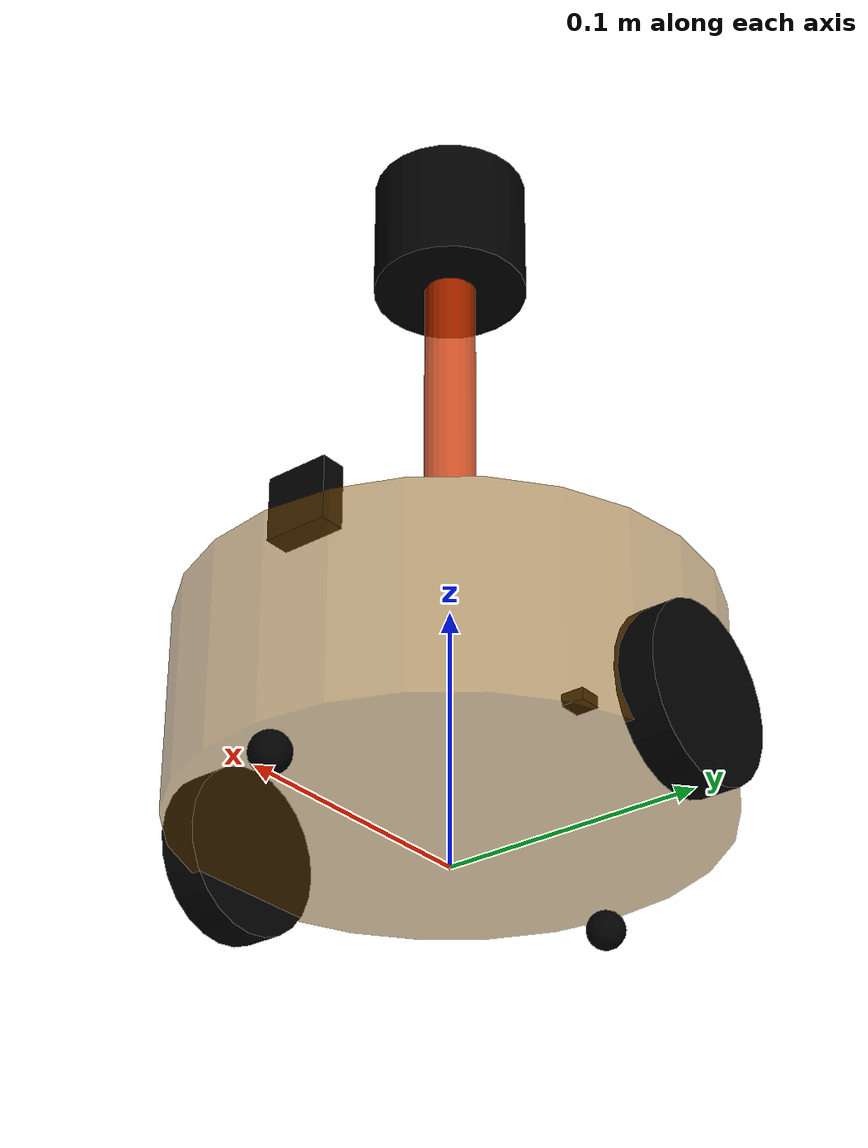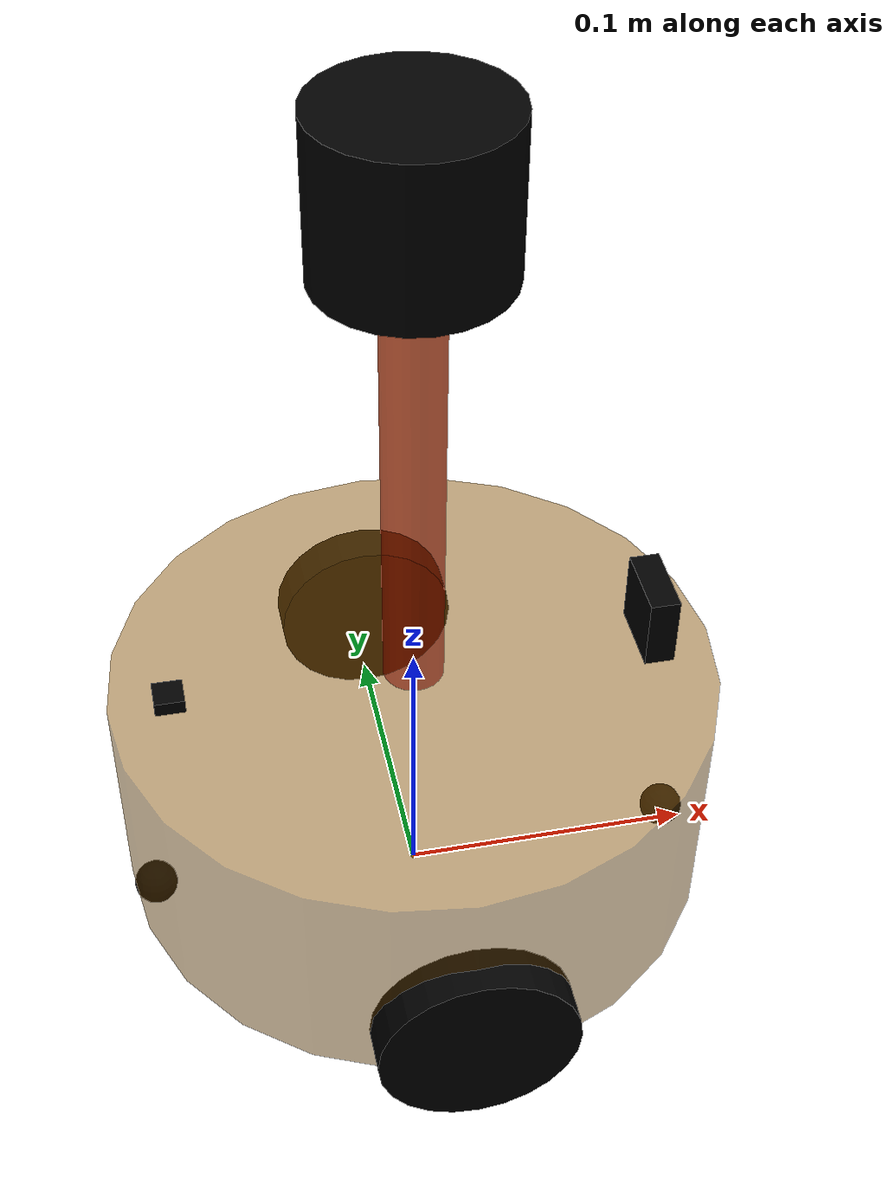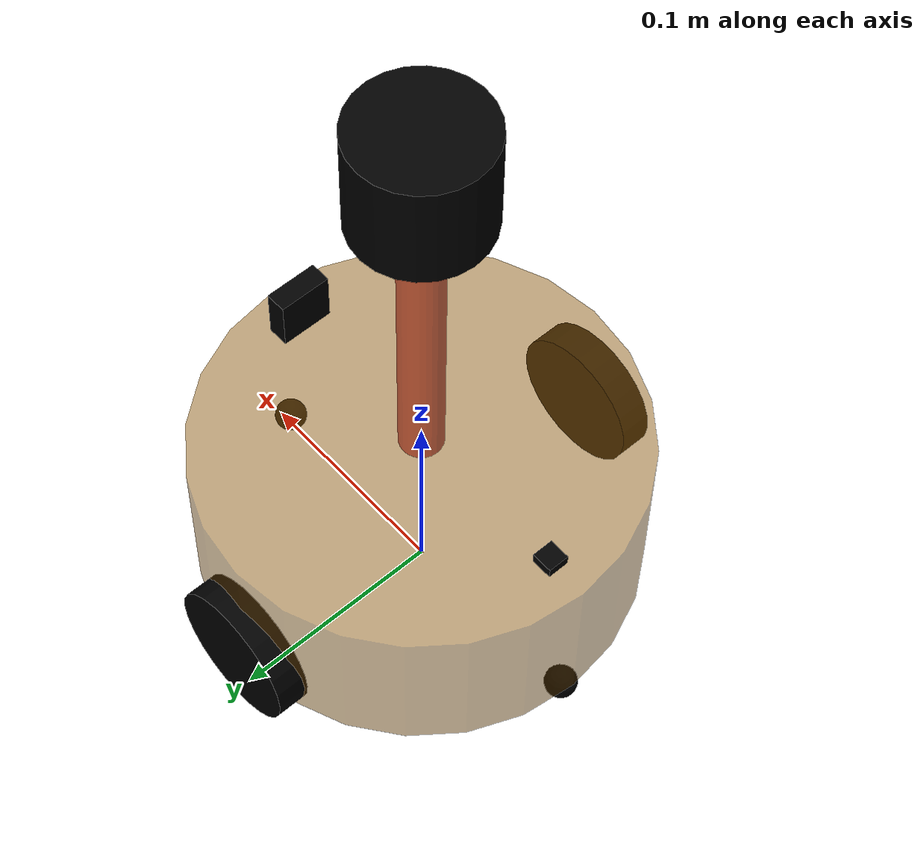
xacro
<!-- 摄像头相关的 xacro 文件 -->
<!-- 组合小车底盘与摄像头与雷达 -->
<robot name="Robot" xmlns:xacro="http://wiki.ros.org/xacro">
    <xacro:include filename="Robot_base.xacro" />
    <xacro:include filename="Robot_gyro.xacro" />
    <xacro:include filename="Robot_camera.xacro" />
    <xacro:include filename="Robot_laser.xacro" />
</robot>

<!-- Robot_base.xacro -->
<!--
    使用 xacro 优化 URDF 版的小车底盘实现：

    实现思路:
    1.将一些常量、变量封装为 xacro:property
      比如:PI 值、小车底盘半径、离地间距、车轮半径、宽度 ....
    2.使用 宏 封装驱动轮以及支撑轮实现，调用相关宏生成驱动轮与支撑轮

-->
<!-- 根标签，必须声明 xmlns:xacro -->
<robot name="Robot_base" xmlns:xacro="http://www.ros.org/wiki/xacro">
    <!-- 封装变量、常量 -->
    <xacro:property name="PI" value="3.141"/>
    <!-- 宏:黑色设置 -->
    <material name="black">
        <color rgba="0.0 0.0 0.0 1.0" />
    </material>
    <!-- 底盘属性 -->
    <xacro:property name="base_footprint_radius" value="0.001" /> <!-- base_footprint 半径  -->
    <xacro:property name="base_link_radius" value="0.1" /> <!-- base_link 半径 -->
    <xacro:property name="base_link_length" value="0.08" /> <!-- base_link 长 -->
    <xacro:property name="earth_space" value="0.015" /> <!-- 离地间距 -->

    <!-- 底盘 -->
    <link name="base_footprint">
      <visual>
        <geometry>
          <sphere radius="${base_footprint_radius}" />
        </geometry>
      </visual>
    </link>

    <link name="base_link">
      <visual>
        <geometry>
          <cylinder radius="${base_link_radius}" length="${base_link_length}" />
        </geometry>
        <origin xyz="0 0 0" rpy="0 0 0" />
        <material name="yellow">
          <color rgba="0.5 0.3 0.0 0.5" />
        </material>
      </visual>
    </link>

    <joint name="base_link2base_footprint" type="fixed">
      <parent link="base_footprint" />
      <child link="base_link" />
      <origin xyz="0 0 ${earth_space + base_link_length / 2 }" />
    </joint>

    <!-- 驱动轮 -->
    <!-- 驱动轮属性 -->
    <xacro:property name="wheel_radius" value="0.0325" /><!-- 半径 -->
    <xacro:property name="wheel_length" value="0.015" /><!-- 宽度 -->
    <!-- 驱动轮宏实现 -->
    <xacro:macro name="add_wheels" params="name flag">
      <link name="${name}_wheel">
        <visual>
          <geometry>
            <cylinder radius="${wheel_radius}" length="${wheel_length}" />
          </geometry>
          <origin xyz="0.0 0.0 0.0" rpy="${PI / 2} 0.0 0.0" />
          <material name="black" />
        </visual>
      </link>

      <joint name="base_${name}_wheel_joint" type="continuous">
        <parent link="base_link" />
        <child link="${name}_wheel" />
        <origin xyz="0 ${flag * base_link_radius} ${-(earth_space + base_link_length / 2 - wheel_radius) }" />
        <axis xyz="0 1 0" />
      </joint>
    </xacro:macro>
    <xacro:add_wheels name="l" flag="1" />
    <xacro:add_wheels name="r" flag="-1" />
    <!-- 支撑轮 -->
    <!-- 支撑轮属性 -->
    <xacro:property name="support_wheel_radius" value="0.0075" /> <!-- 支撑轮半径 -->

    <!-- 支撑轮宏 -->
    <xacro:macro name="add_support_wheel" params="name flag" >
      <link name="${name}_wheel">
        <visual>
            <geometry>
                <sphere radius="${support_wheel_radius}" />
            </geometry>
            <origin xyz="0 0 0" rpy="0 0 0" />
            <material name="black" />
        </visual>
      </link>

      <joint name="${name}_wheel2base_link" type="continuous">
          <parent link="base_link" />
          <child link="${name}_wheel" />
          <origin xyz="${flag * (base_link_radius - support_wheel_radius)} 0 ${-(base_link_length / 2 + earth_space / 2)}" />
          <axis xyz="1 1 1" />
      </joint>
    </xacro:macro>

    <xacro:add_support_wheel name="front" flag="1" />
    <xacro:add_support_wheel name="back" flag="-1" />

</robot>

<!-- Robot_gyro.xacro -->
<!-- 摄像头相关的 xacro 文件 -->
<robot name="Robot_gyro" xmlns:xacro="http://wiki.ros.org/xacro">
    <!-- 摄像头属性 -->
    <xacro:property name="gyro_length" value="0.01" /> <!-- 摄像头长度(x) -->
    <xacro:property name="gyro_width" value="0.01" /> <!-- 摄像头宽度(y) -->
    <xacro:property name="gyro_height" value="0.005" /> <!-- 摄像头高度(z) -->
    <xacro:property name="gyro_x" value="-0.08" /> <!-- 摄像头安装的x坐标 -->
    <xacro:property name="gyro_y" value="0.0" /> <!-- 摄像头安装的y坐标 -->
    <xacro:property name="gyro_z" value="${base_link_length / 2 + gyro_height / 2}" /> <!-- 摄像头安装的z坐标:底盘高度 / 2 + 摄像头高度 / 2  -->

    <!-- 摄像头关节以及link -->
    <link name="gyro">
        <visual>
            <geometry>
                <box size="${gyro_length} ${gyro_width} ${gyro_height}" />
            </geometry>
            <origin xyz="0.0 0.0 0.0" rpy="0.0 0.0 0.0" />
            <material name="black" />
        </visual>
    </link>

    <joint name="gyro2base_link" type="fixed">
        <parent link="base_link" />
        <child link="gyro" />
        <origin xyz="${gyro_x} ${gyro_y} ${gyro_z}" />
    </joint>
</robot>

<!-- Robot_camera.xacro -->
<!-- 摄像头相关的 xacro 文件 -->
<robot name="Robot_camera" xmlns:xacro="http://wiki.ros.org/xacro">
    <!-- 摄像头属性 -->
    <xacro:property name="camera_length" value="0.01" /> <!-- 摄像头长度(x) -->
    <xacro:property name="camera_width" value="0.025" /> <!-- 摄像头宽度(y) -->
    <xacro:property name="camera_height" value="0.025" /> <!-- 摄像头高度(z) -->
    <xacro:property name="camera_x" value="0.08" /> <!-- 摄像头安装的x坐标 -->
    <xacro:property name="camera_y" value="0.0" /> <!-- 摄像头安装的y坐标 -->
    <xacro:property name="camera_z" value="${base_link_length / 2 + camera_height / 2}" /> <!-- 摄像头安装的z坐标:底盘高度 / 2 + 摄像头高度 / 2  -->

    <!-- 摄像头关节以及link -->
    <link name="camera">
        <visual>
            <geometry>
                <box size="${camera_length} ${camera_width} ${camera_height}" />
            </geometry>
            <origin xyz="0.0 0.0 0.0" rpy="0.0 0.0 0.0" />
            <material name="black" />
        </visual>
    </link>

    <joint name="camera2base_link" type="fixed">
        <parent link="base_link" />
        <child link="camera" />
        <origin xyz="${camera_x} ${camera_y} ${camera_z}" />
    </joint>
</robot>

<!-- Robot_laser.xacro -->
<!-- 摄像头相关的 xacro 文件 -->
<robot name="Robot_laser" xmlns:xacro="http://wiki.ros.org/xacro">
<!--
    小车底盘添加雷达
-->
    <!-- 雷达支架 -->
    <xacro:property name="support_length" value="0.15" /> <!-- 支架长度 -->
    <xacro:property name="support_radius" value="0.01" /> <!-- 支架半径 -->
    <xacro:property name="support_x" value="0.0" /> <!-- 支架安装的x坐标 -->
    <xacro:property name="support_y" value="0.0" /> <!-- 支架安装的y坐标 -->
    <xacro:property name="support_z" value="${base_link_length / 2 + support_length / 2}" /> <!-- 支架安装的z坐标:底盘高度 / 2 + 支架高度 / 2  -->

    <link name="support">
        <visual>
            <geometry>
                <cylinder radius="${support_radius}" length="${support_length}" />
            </geometry>
            <origin xyz="0.0 0.0 0.0" rpy="0.0 0.0 0.0" />
            <material name="red">
                <color rgba="0.8 0.2 0.0 0.8" />
            </material>
        </visual>
    </link>

    <joint name="support2base_link" type="fixed">
        <parent link="base_link" />
        <child link="support" />
        <origin xyz="${support_x} ${support_y} ${support_z}" />
    </joint>

    <!-- 雷达属性 -->
    <xacro:property name="laser_length" value="0.05" /> <!-- 雷达长度 -->
    <xacro:property name="laser_radius" value="0.03" /> <!-- 雷达半径 -->
    <xacro:property name="laser_x" value="0.0" /> <!-- 雷达安装的x坐标 -->
    <xacro:property name="laser_y" value="0.0" /> <!-- 雷达安装的y坐标 -->
    <xacro:property name="laser_z" value="${support_length / 2 + laser_length / 2}" /> <!-- 雷达安装的z坐标:支架高度 / 2 + 雷达高度 / 2  -->

    <!-- 雷达关节以及link -->
    <link name="laser">
        <visual>
            <geometry>
                <cylinder radius="${laser_radius}" length="${laser_length}" />
            </geometry>
            <origin xyz="0.0 0.0 0.0" rpy="0.0 0.0 0.0" />
            <material name="black" />
        </visual>
    </link>

    <joint name="laser2support" type="fixed">
        <parent link="support" />
        <child link="laser" />
        <origin xyz="${laser_x} ${laser_y} ${laser_z}" />
    </joint>
</robot>
